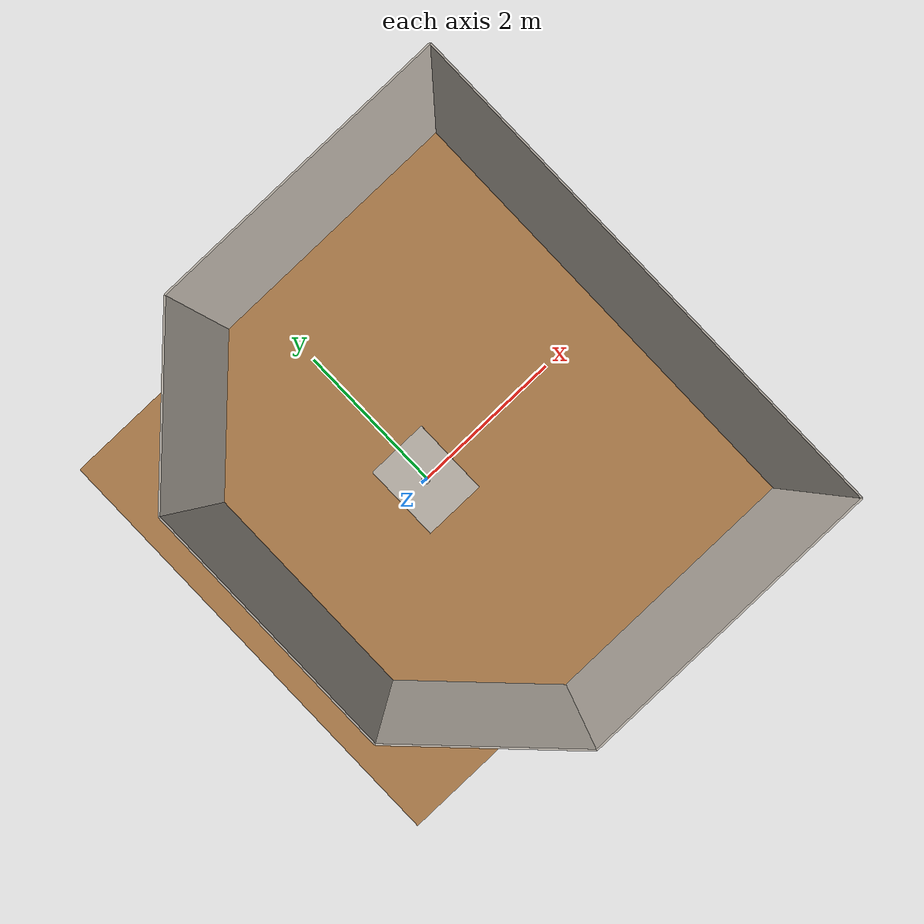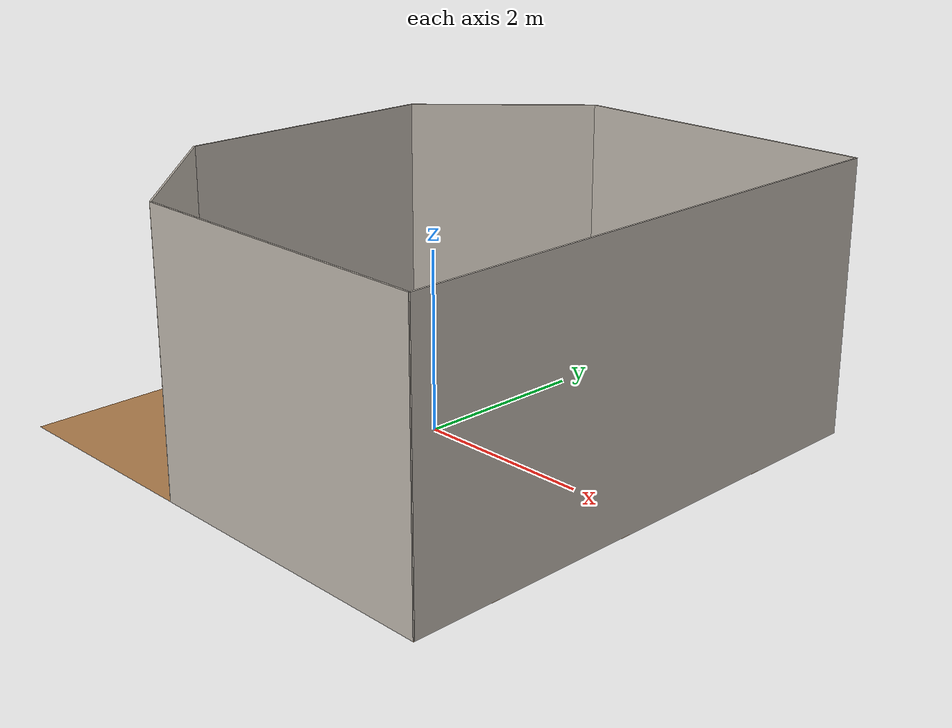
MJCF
<mujoco model="table_arena">
  <asset>
    <texture builtin="gradient" height="256" rgb1=".9 .9 1." rgb2=".2 .3 .4" type="skybox" width="256"/>
    <texture file="../textures/wood-tiles.png" type="2d" name="texplane"/>
    <material name="floorplane" reflectance="0.01" shininess="0.0" specular="0.0" texrepeat="2 2" texture="texplane" texuniform="true"/>
    <!-- ceramic table texture and material-->
    <texture file="../textures/ceramic.png" type="cube" name="tex-ceramic"/>
    <material name="table_ceramic" reflectance="0.0" shininess="0.0" specular="0.2" texrepeat="1 1" texture="tex-ceramic" />
    <!-- steel legs -->
    <texture file="../textures/steel-brushed.png" type="cube" name="tex-steel-brushed"/>
    <material name="table_legs_metal" reflectance="0.8" shininess="0.8" texrepeat="1 1" texture="tex-steel-brushed" />
    <!-- plaster walls -->
    <texture file="../textures/cream-plaster.png" type="2d" name="tex-cream-plaster"/>
    <material name="walls_mat" reflectance="0.0" shininess="0.1" specular="0.1" texrepeat="3 3" texture="tex-cream-plaster" texuniform="true" />
    <!-- added table texture and material for domain randomization -->
    <texture  name="textable" builtin="flat" height="512" width="512" rgb1="0.5 0.5 0.5" rgb2="0.5 0.5 0.5"/>
    <material name="table_mat" texture="textable" />

  </asset>
  <worldbody>
    <!-- Floor -->
    <geom condim="3" material="floorplane" name="floor" pos="0 0 0" size="3 3 .125" type="plane"/>
    <!-- Walls (visual only) -->
    <geom pos="-1.25 2.25 1.5" quat="0.6532815 0.6532815 0.2705981 0.2705981" size="1.06 1.5 0.01" type="box" conaffinity="0" contype="0" group="1" name="wall_leftcorner_visual" material="walls_mat"/>
    <geom pos="-1.25 -2.25 1.5" quat="0.6532815 0.6532815 -0.2705981 -0.2705981" size="1.06 1.5 0.01" type="box" conaffinity="0" contype="0" group="1" name="wall_rightcorner_visual" material="walls_mat"/>
    <geom pos="1.25 3 1.5" quat="0.7071 0.7071 0 0" size="1.75 1.5 0.01" type="box" conaffinity="0" contype="0" group="1" name="wall_left_visual" material="walls_mat"/>
    <geom pos="1.25 -3 1.5" quat="0.7071 -0.7071 0 0" size="1.75 1.5 0.01" type="box" conaffinity="0" contype="0" group="1" name="wall_right_visual" material="walls_mat"/>
    <geom pos="-2 0 1.5" quat="0.5 0.5 0.5 0.5" size="1.5 1.5 0.01" type="box" conaffinity="0" contype="0" group="1" name="wall_rear_visual" material="walls_mat"/>
    <geom pos="3 0 1.5" quat="0.5 0.5 -0.5 -0.5" size="3 1.5 0.01" type="box" conaffinity="0" contype="0" group="1" name="wall_front_visual" material="walls_mat"/>
    <!-- Table body -->
    <body name="table" pos="0 0 0.4">
      <!--plane size 的最后一个参数是网格大小-->
      <geom pos="0 0 0" size="0.4 0.5 0.125" type="plane" condim="3" name="table_collision"/>
      <geom pos="0 0 0" size="0.4 0.5 0.025" type="box" conaffinity="0" contype="0" group="1" name="table_visual" material="table_ceramic"/>
      <site pos="0 0 0.4" name="table_top" size="0.001 0.001 0.001" rgba="0 0 0 0" type="sphere" group="1"/>
      <!-- Legs (visual only) -->
      <geom pos="0 0 0" size="0.05 0.1" type="cylinder" conaffinity="0" contype="0" group="1" name="table_leg1_visual" material="table_legs_metal"/>
      <geom pos="0 0 0" size="0.05 0.1" type="cylinder" conaffinity="0" contype="0" group="1" name="table_leg2_visual" material="table_legs_metal"/>
      <geom pos="0 0 0" size="0.05 0.1" type="cylinder" conaffinity="0" contype="0" group="1" name="table_leg3_visual" material="table_legs_metal"/>
      <geom pos="0 0 0" size="0.05 0.1" type="cylinder" conaffinity="0" contype="0" group="1" name="table_leg4_visual" material="table_legs_metal"/>

      <site name="table_orign"  pos="0 0 0.025"    size="0.01 0.01 0.01" rgba="0 0 1 1" type="sphere" group="1"/>
      <site name="table_axis_x" pos="0.05 0 0.025" size="0.005 0.05" quat="0.707105 0 0.707108 0" rgba="1 0 0 1" type="cylinder" group="1"/>
      <site name="table_axis_y" pos="0 0.05 0.025" size="0.005 0.05" quat="-0.707105 -0.707108 0 0" rgba="0 1 0 1" type="cylinder" group="1"/>
      <site name="table_axis_z" pos="0 0 0.075"    size="0.005 0.05" quat="1 0 0 0" rgba="0 0 1 1" type="cylinder" group="1"/>
    </body>

    <light name="light1" diffuse=".8 .8 .8" dir="0 -.15 -1" directional="false" pos="1 1 4.0" specular="0.3 0.3 0.3" castshadow="false"/>
    <light name="light2" diffuse=".8 .8 .8" dir="0 -.15 -1" directional="false" pos="-3. -3. 4.0" specular="0.3 0.3 0.3" castshadow="false"/>
    <!-- quat - w, x, y, z -->
    <!-- front view -->
    <camera mode="fixed" name="frontview" pos="1.6 0 1.45" quat="0.56 0.43 0.43 0.56"/>
    <!-- bird view -->
    <camera mode="fixed" name="birdview" pos="-0.2 0 3.0" quat="0.7071 0 0 0.7071"/>
    <!-- agent view -->
    <camera mode="fixed" name="agentview" pos="0.5 0 1.35" quat="0.653 0.271 0.271 0.653"/>
    <!-- side view -->
    <camera mode="fixed" name="sideview" pos="-0.14651774593317116 0.861224129427358 1.4879572214102434" quat="0.052 0.070 -0.598 -0.797" />
  </worldbody>
</mujoco>
